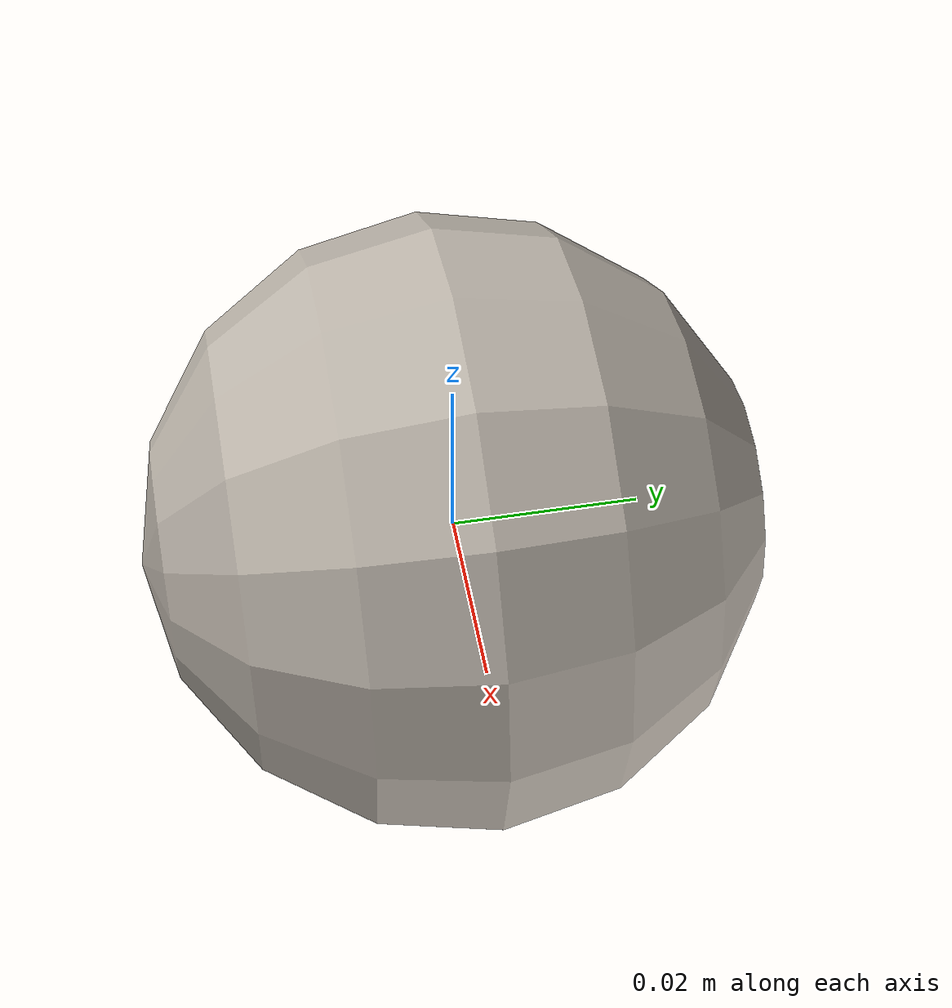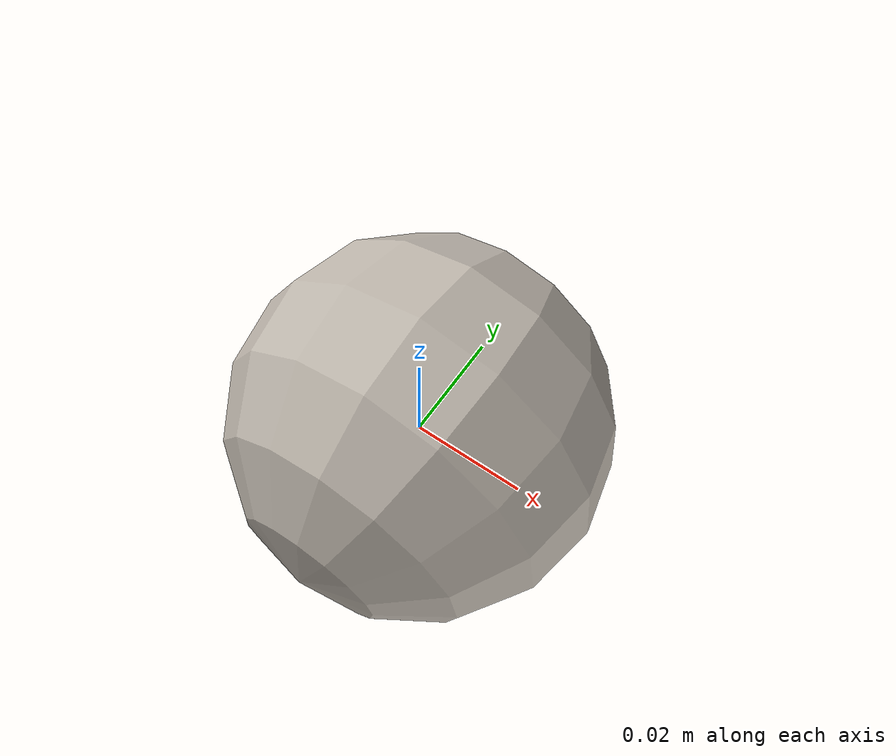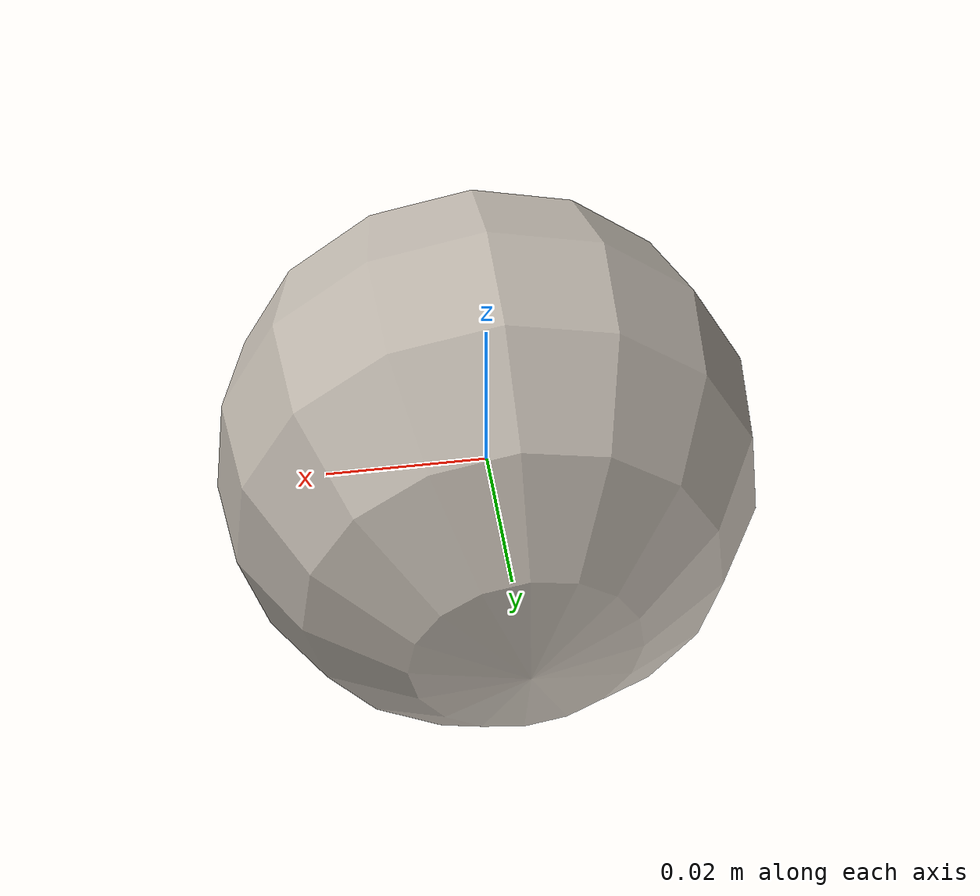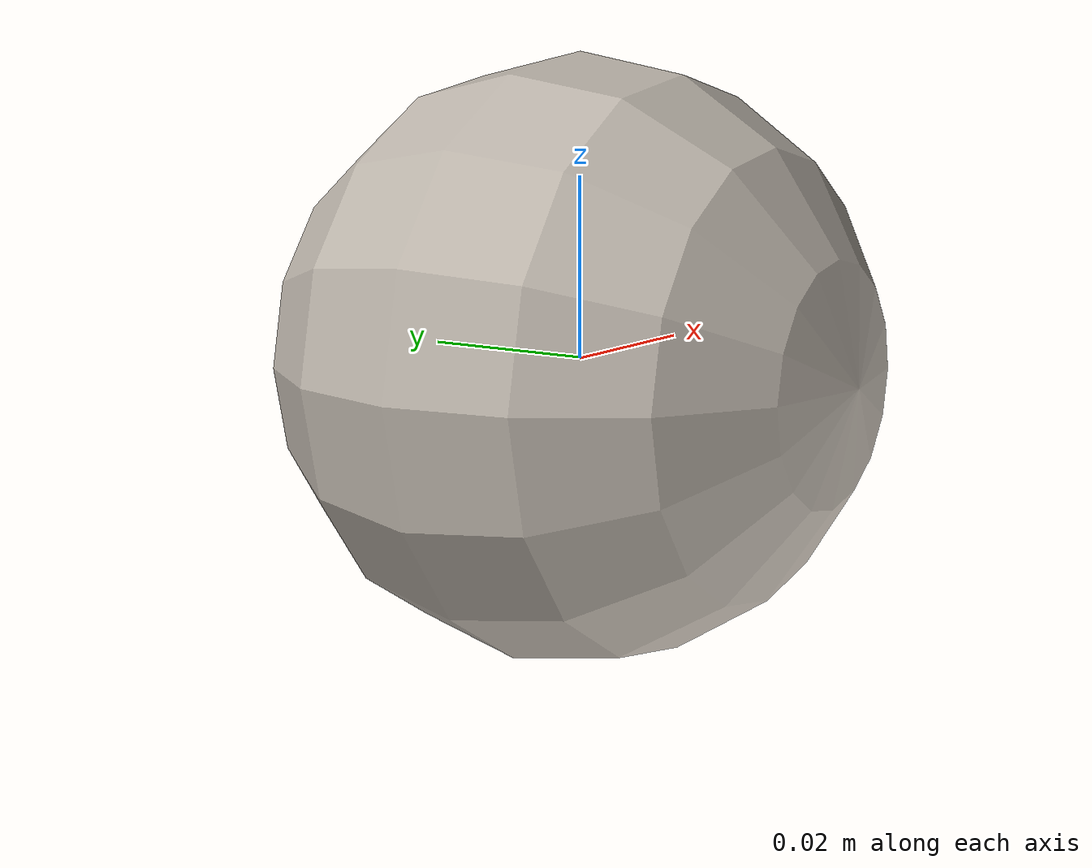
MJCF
<mujoco model="ball_ed1e811f">
  <compiler angle="radian"/>
  <asset>
    <texture type="2d" name="ball_ed1e811f_tex" file="ball_ed1e811f_visual_0.png"/>
    <material name="ball_ed1e811f_mat" texture="ball_ed1e811f_tex"/>
    <mesh name="ball_ed1e811f_visual" content_type="model/obj" file="ball_ed1e811f_visual.obj" scale="-0.949765 0.949765 0.949765"/>
    <mesh name="ball_ed1e811f_c0" content_type="model/obj" file="ball_ed1e811f_c0.obj" scale="-0.949765 0.949765 0.949765"/>
  </asset>
  <worldbody>
    <body name="ball_ed1e811f">
      <freejoint/>
      <geom name="ball_ed1e811f_visual" type="mesh" mesh="ball_ed1e811f_visual" mass="1e-8" contype="0" conaffinity="0" group="2" material="ball_ed1e811f_mat"/>
      <geom name="ball_ed1e811f_c0" type="mesh" mesh="ball_ed1e811f_c0" group="3" density="444.353" friction="0.9 0.05 0.005" condim="4" rgba="0.4 0.5 0.9 0.35"/>
    </body>
  </worldbody>
</mujoco>
